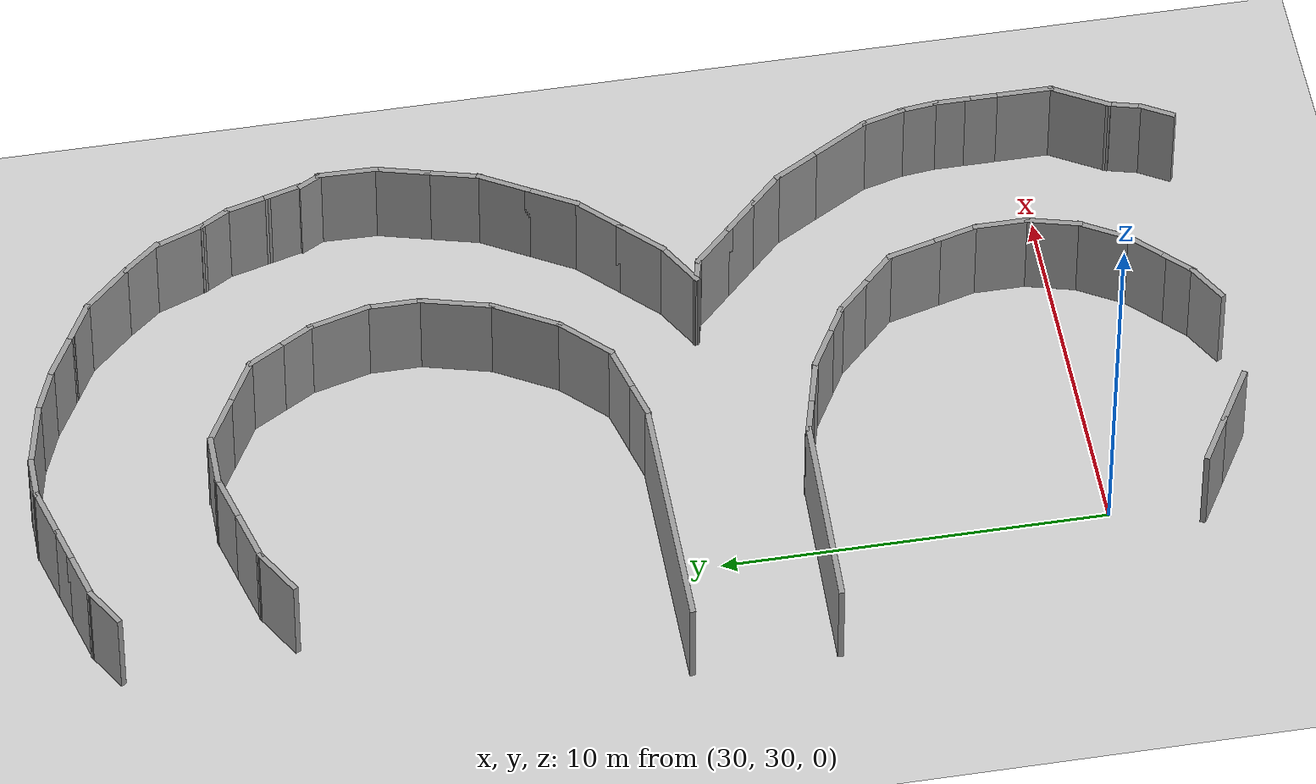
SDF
<sdf version="1.7">
 <world name="default">
  <model name="ground_plane">
   <static>1</static>
   <link name="link">
    <collision name="collision">
     <geometry><plane><normal>0 0 1</normal><size>100 100</size></plane></geometry>
     <surface><friction><ode><mu>100</mu><mu2>50</mu2></ode></friction></surface>
    </collision>
    <visual name="visual">
     <cast_shadows>0</cast_shadows>
     <geometry><plane><normal>0 0 1</normal><size>100 100</size></plane></geometry>
     <material>
      <script><uri>file://media/materials/scripts/gazebo.material</uri><name>Gazebo/Grey</name></script>
     </material>
    </visual>
   </link>
  </model>
  <model name="map4-otto">
   <pose>24.785 39.2572 0 0 -0 0</pose>
   <link name="Wall_100">
    <collision name="Wall_100_Collision">
     <geometry><box><size>1.5 0.15 2.5</size></box></geometry>
     <pose>0 0 1.25 0 -0 0</pose>
    </collision>
    <visual name="Wall_100_Visual">
     <pose>0 0 1.25 0 -0 0</pose>
     <geometry><box><size>1.5 0.15 2.5</size></box></geometry>
     <material>
      <script><uri>file://media/materials/scripts/gazebo.material</uri><name>Gazebo/Grey</name></script>
      <ambient>1 1 1 1</ambient>
     </material>
     <meta><layer>0</layer></meta>
    </visual>
    <pose>8.73086 -2.23652 0 0 -0 2.87979</pose>
   </link>
   <link name="Wall_101">
    <collision name="Wall_101_Collision">
     <geometry><box><size>1 0.15 2.5</size></box></geometry>
     <pose>0 0 1.25 0 -0 0</pose>
    </collision>
    <visual name="Wall_101_Visual">
     <pose>0 0 1.25 0 -0 0</pose>
     <geometry><box><size>1 0.15 2.5</size></box></geometry>
     <material>
      <script><uri>file://media/materials/scripts/gazebo.material</uri><name>Gazebo/Grey</name></script>
      <ambient>1 1 1 1</ambient>
     </material>
     <meta><layer>0</layer></meta>
    </visual>
    <pose>7.66835 -1.95182 0 0 -0 2.87979</pose>
   </link>
   <link name="Wall_102">
    <collision name="Wall_102_Collision">
     <geometry><box><size>5.5143 0.15 2.5</size></box></geometry>
     <pose>0 0 1.25 0 -0 0</pose>
    </collision>
    <visual name="Wall_102_Visual">
     <pose>0 0 1.25 0 -0 0</pose>
     <geometry><box><size>5.5143 0.15 2.5</size></box></geometry>
     <material>
      <script><uri>file://media/materials/scripts/gazebo.material</uri><name>Gazebo/Grey</name></script>
      <ambient>1 1 1 1</ambient>
     </material>
     <meta><layer>0</layer></meta>
    </visual>
    <pose>4.57683 -1.76312 0 0 -0 3.11225</pose>
   </link>
   <link name="Wall_198">
    <collision name="Wall_198_Collision">
     <geometry><box><size>1 0.15 2.5</size></box></geometry>
     <pose>0 0 1.25 0 -0 0</pose>
    </collision>
    <visual name="Wall_198_Visual">
     <pose>0 0 1.25 0 -0 0</pose>
     <geometry><box><size>1 0.15 2.5</size></box></geometry>
     <material>
      <script><uri>file://media/materials/scripts/gazebo.material</uri><name>Gazebo/Grey</name></script>
      <ambient>1 1 1 1</ambient>
     </material>
     <meta><layer>0</layer></meta>
    </visual>
    <pose>16.4429 -12.7382 0 0 -0 1.0472</pose>
   </link>
   <link name="Wall_199">
    <collision name="Wall_199_Collision">
     <geometry><box><size>1 0.15 2.5</size></box></geometry>
     <pose>0 0 1.25 0 -0 0</pose>
    </collision>
    <visual name="Wall_199_Visual">
     <pose>0 0 1.25 0 -0 0</pose>
     <geometry><box><size>1 0.15 2.5</size></box></geometry>
     <material>
      <script><uri>file://media/materials/scripts/gazebo.material</uri><name>Gazebo/Grey</name></script>
      <ambient>1 1 1 1</ambient>
     </material>
     <meta><layer>0</layer></meta>
    </visual>
    <pose>16.7654 -11.9596 0 0 -0 1.309</pose>
   </link>
   <link name="Wall_200">
    <collision name="Wall_200_Collision">
     <geometry><box><size>1.75 0.15 2.5</size></box></geometry>
     <pose>0 0 1.25 0 -0 0</pose>
    </collision>
    <visual name="Wall_200_Visual">
     <pose>0 0 1.25 0 -0 0</pose>
     <geometry><box><size>1.75 0.15 2.5</size></box></geometry>
     <material>
      <script><uri>file://media/materials/scripts/gazebo.material</uri><name>Gazebo/Grey</name></script>
      <ambient>1 1 1 1</ambient>
     </material>
     <meta><layer>0</layer></meta>
    </visual>
    <pose>17.2754 -10.8563 0 0 -0 1.0472</pose>
   </link>
   <link name="Wall_201">
    <collision name="Wall_201_Collision">
     <geometry><box><size>1.5 0.15 2.5</size></box></geometry>
     <pose>0 0 1.25 0 -0 0</pose>
    </collision>
    <visual name="Wall_201_Visual">
     <pose>0 0 1.25 0 -0 0</pose>
     <geometry><box><size>1.5 0.15 2.5</size></box></geometry>
     <material>
      <script><uri>file://media/materials/scripts/gazebo.material</uri><name>Gazebo/Grey</name></script>
      <ambient>1 1 1 1</ambient>
     </material>
     <meta><layer>0</layer></meta>
    </visual>
    <pose>17.6754 -9.48846 0 0 -0 1.5708</pose>
   </link>
   <link name="Wall_202">
    <collision name="Wall_202_Collision">
     <geometry><box><size>1 0.15 2.5</size></box></geometry>
     <pose>0 0 1.25 0 -0 0</pose>
    </collision>
    <visual name="Wall_202_Visual">
     <pose>0 0 1.25 0 -0 0</pose>
     <geometry><box><size>1 0.15 2.5</size></box></geometry>
     <material>
      <script><uri>file://media/materials/scripts/gazebo.material</uri><name>Gazebo/Grey</name></script>
      <ambient>1 1 1 1</ambient>
     </material>
     <meta><layer>0</layer></meta>
    </visual>
    <pose>17.6754 -8.38846 0 0 -0 1.5708</pose>
   </link>
   <link name="Wall_203">
    <collision name="Wall_203_Collision">
     <geometry><box><size>1 0.15 2.5</size></box></geometry>
     <pose>0 0 1.25 0 -0 0</pose>
    </collision>
    <visual name="Wall_203_Visual">
     <pose>0 0 1.25 0 -0 0</pose>
     <geometry><box><size>1 0.15 2.5</size></box></geometry>
     <material>
      <script><uri>file://media/materials/scripts/gazebo.material</uri><name>Gazebo/Grey</name></script>
      <ambient>1 1 1 1</ambient>
     </material>
     <meta><layer>0</layer></meta>
    </visual>
    <pose>17.6754 -7.53846 0 0 -0 1.5708</pose>
   </link>
   <link name="Wall_204">
    <collision name="Wall_204_Collision">
     <geometry><box><size>1.09133 0.15 2.5</size></box></geometry>
     <pose>0 0 1.25 0 -0 0</pose>
    </collision>
    <visual name="Wall_204_Visual">
     <pose>0 0 1.25 0 -0 0</pose>
     <geometry><box><size>1.09133 0.15 2.5</size></box></geometry>
     <material>
      <script><uri>file://media/materials/scripts/gazebo.material</uri><name>Gazebo/Grey</name></script>
      <ambient>1 1 1 1</ambient>
     </material>
     <meta><layer>0</layer></meta>
    </visual>
    <pose>17.6226 -6.64576 0 0 -0 1.68326</pose>
   </link>
   <link name="Wall_205">
    <collision name="Wall_205_Collision">
     <geometry><box><size>1.25 0.15 2.5</size></box></geometry>
     <pose>0 0 1.25 0 -0 0</pose>
    </collision>
    <visual name="Wall_205_Visual">
     <pose>0 0 1.25 0 -0 0</pose>
     <geometry><box><size>1.25 0.15 2.5</size></box></geometry>
     <material>
      <script><uri>file://media/materials/scripts/gazebo.material</uri><name>Gazebo/Grey</name></script>
      <ambient>1 1 1 1</ambient>
     </material>
     <meta><layer>0</layer></meta>
    </visual>
    <pose>17.4274 -5.6754 0 0 -0 1.8326</pose>
   </link>
   <link name="Wall_208">
    <collision name="Wall_208_Collision">
     <geometry><box><size>1.75 0.15 2.5</size></box></geometry>
     <pose>0 0 1.25 0 -0 0</pose>
    </collision>
    <visual name="Wall_208_Visual">
     <pose>0 0 1.25 0 -0 0</pose>
     <geometry><box><size>1.75 0.15 2.5</size></box></geometry>
     <material>
      <script><uri>file://media/materials/scripts/gazebo.material</uri><name>Gazebo/Grey</name></script>
      <ambient>1 1 1 1</ambient>
     </material>
     <meta><layer>0</layer></meta>
    </visual>
    <pose>16.8851 -4.45132 0 0 -0 2.0944</pose>
   </link>
   <link name="Wall_209">
    <collision name="Wall_209_Collision">
     <geometry><box><size>1.5 0.15 2.5</size></box></geometry>
     <pose>0 0 1.25 0 -0 0</pose>
    </collision>
    <visual name="Wall_209_Visual">
     <pose>0 0 1.25 0 -0 0</pose>
     <geometry><box><size>1.5 0.15 2.5</size></box></geometry>
     <material>
      <script><uri>file://media/materials/scripts/gazebo.material</uri><name>Gazebo/Grey</name></script>
      <ambient>1 1 1 1</ambient>
     </material>
     <meta><layer>0</layer></meta>
    </visual>
    <pose>16.1476 -3.17393 0 0 -0 2.0944</pose>
   </link>
   <link name="Wall_210">
    <collision name="Wall_210_Collision">
     <geometry><box><size>1.25 0.15 2.5</size></box></geometry>
     <pose>0 0 1.25 0 -0 0</pose>
    </collision>
    <visual name="Wall_210_Visual">
     <pose>0 0 1.25 0 -0 0</pose>
     <geometry><box><size>1.25 0.15 2.5</size></box></geometry>
     <material>
      <script><uri>file://media/materials/scripts/gazebo.material</uri><name>Gazebo/Grey</name></script>
      <ambient>1 1 1 1</ambient>
     </material>
     <meta><layer>0</layer></meta>
    </visual>
    <pose>15.4211 -2.20046 0 0 -0 2.35619</pose>
   </link>
   <link name="Wall_211">
    <collision name="Wall_211_Collision">
     <geometry><box><size>1.25 0.15 2.5</size></box></geometry>
     <pose>0 0 1.25 0 -0 0</pose>
    </collision>
    <visual name="Wall_211_Visual">
     <pose>0 0 1.25 0 -0 0</pose>
     <geometry><box><size>1.25 0.15 2.5</size></box></geometry>
     <material>
      <script><uri>file://media/materials/scripts/gazebo.material</uri><name>Gazebo/Grey</name></script>
      <ambient>1 1 1 1</ambient>
     </material>
     <meta><layer>0</layer></meta>
    </visual>
    <pose>14.6433 -1.42264 0 0 -0 2.35619</pose>
   </link>
   <link name="Wall_212">
    <collision name="Wall_212_Collision">
     <geometry><box><size>1.5 0.15 2.5</size></box></geometry>
     <pose>0 0 1.25 0 -0 0</pose>
    </collision>
    <visual name="Wall_212_Visual">
     <pose>0 0 1.25 0 -0 0</pose>
     <geometry><box><size>1.5 0.15 2.5</size></box></geometry>
     <material>
      <script><uri>file://media/materials/scripts/gazebo.material</uri><name>Gazebo/Grey</name></script>
      <ambient>1 1 1 1</ambient>
     </material>
     <meta><layer>0</layer></meta>
    </visual>
    <pose>13.7771 -0.556434 0 0 -0 2.35619</pose>
   </link>
   <link name="Wall_213">
    <collision name="Wall_213_Collision">
     <geometry><box><size>0.75 0.15 2.5</size></box></geometry>
     <pose>0 0 1.25 0 -0 0</pose>
    </collision>
    <visual name="Wall_213_Visual">
     <pose>0 0 1.25 0 -0 0</pose>
     <geometry><box><size>0.75 0.15 2.5</size></box></geometry>
     <material>
      <script><uri>file://media/materials/scripts/gazebo.material</uri><name>Gazebo/Grey</name></script>
      <ambient>1 1 1 1</ambient>
     </material>
     <meta><layer>0</layer></meta>
    </visual>
    <pose>13.01 -0.001491 0 0 -0 2.87979</pose>
   </link>
   <link name="Wall_214">
    <collision name="Wall_214_Collision">
     <geometry><box><size>1.5 0.15 2.5</size></box></geometry>
     <pose>0 0 1.25 0 -0 0</pose>
    </collision>
    <visual name="Wall_214_Visual">
     <pose>0 0 1.25 0 -0 0</pose>
     <geometry><box><size>1.5 0.15 2.5</size></box></geometry>
     <material>
      <script><uri>file://media/materials/scripts/gazebo.material</uri><name>Gazebo/Grey</name></script>
      <ambient>1 1 1 1</ambient>
     </material>
     <meta><layer>0</layer></meta>
    </visual>
    <pose>13.3048 0.413655 0 0 -0 0.523599</pose>
   </link>
   <link name="Wall_215">
    <collision name="Wall_215_Collision">
     <geometry><box><size>1.5 0.15 2.5</size></box></geometry>
     <pose>0 0 1.25 0 -0 0</pose>
    </collision>
    <visual name="Wall_215_Visual">
     <pose>0 0 1.25 0 -0 0</pose>
     <geometry><box><size>1.5 0.15 2.5</size></box></geometry>
     <material>
      <script><uri>file://media/materials/scripts/gazebo.material</uri><name>Gazebo/Grey</name></script>
      <ambient>1 1 1 1</ambient>
     </material>
     <meta><layer>0</layer></meta>
    </visual>
    <pose>14.3667 1.22845 0 0 -0 0.785398</pose>
   </link>
   <link name="Wall_216">
    <collision name="Wall_216_Collision">
     <geometry><box><size>1.5 0.15 2.5</size></box></geometry>
     <pose>0 0 1.25 0 -0 0</pose>
    </collision>
    <visual name="Wall_216_Visual">
     <pose>0 0 1.25 0 -0 0</pose>
     <geometry><box><size>1.5 0.15 2.5</size></box></geometry>
     <material>
      <script><uri>file://media/materials/scripts/gazebo.material</uri><name>Gazebo/Grey</name></script>
      <ambient>1 1 1 1</ambient>
     </material>
     <meta><layer>0</layer></meta>
    </visual>
    <pose>15.3213 2.18305 0 0 -0 0.785398</pose>
   </link>
   <link name="Wall_217">
    <collision name="Wall_217_Collision">
     <geometry><box><size>1.5 0.15 2.5</size></box></geometry>
     <pose>0 0 1.25 0 -0 0</pose>
    </collision>
    <visual name="Wall_217_Visual">
     <pose>0 0 1.25 0 -0 0</pose>
     <geometry><box><size>1.5 0.15 2.5</size></box></geometry>
     <material>
      <script><uri>file://media/materials/scripts/gazebo.material</uri><name>Gazebo/Grey</name></script>
      <ambient>1 1 1 1</ambient>
     </material>
     <meta><layer>0</layer></meta>
    </visual>
    <pose>16.1361 3.24491 0 0 -0 1.0472</pose>
   </link>
   <link name="Wall_218">
    <collision name="Wall_218_Collision">
     <geometry><box><size>1.5 0.15 2.5</size></box></geometry>
     <pose>0 0 1.25 0 -0 0</pose>
    </collision>
    <visual name="Wall_218_Visual">
     <pose>0 0 1.25 0 -0 0</pose>
     <geometry><box><size>1.5 0.15 2.5</size></box></geometry>
     <material>
      <script><uri>file://media/materials/scripts/gazebo.material</uri><name>Gazebo/Grey</name></script>
      <ambient>1 1 1 1</ambient>
     </material>
     <meta><layer>0</layer></meta>
    </visual>
    <pose>16.8111 4.41404 0 0 -0 1.0472</pose>
   </link>
   <link name="Wall_219">
    <collision name="Wall_219_Collision">
     <geometry><box><size>1.5 0.15 2.5</size></box></geometry>
     <pose>0 0 1.25 0 -0 0</pose>
    </collision>
    <visual name="Wall_219_Visual">
     <pose>0 0 1.25 0 -0 0</pose>
     <geometry><box><size>1.5 0.15 2.5</size></box></geometry>
     <material>
      <script><uri>file://media/materials/scripts/gazebo.material</uri><name>Gazebo/Grey</name></script>
      <ambient>1 1 1 1</ambient>
     </material>
     <meta><layer>0</layer></meta>
    </visual>
    <pose>17.3233 5.65061 0 0 -0 1.309</pose>
   </link>
   <link name="Wall_220">
    <collision name="Wall_220_Collision">
     <geometry><box><size>1.5 0.15 2.5</size></box></geometry>
     <pose>0 0 1.25 0 -0 0</pose>
    </collision>
    <visual name="Wall_220_Visual">
     <pose>0 0 1.25 0 -0 0</pose>
     <geometry><box><size>1.5 0.15 2.5</size></box></geometry>
     <material>
      <script><uri>file://media/materials/scripts/gazebo.material</uri><name>Gazebo/Grey</name></script>
      <ambient>1 1 1 1</ambient>
     </material>
     <meta><layer>0</layer></meta>
    </visual>
    <pose>17.6727 6.95461 0 0 -0 1.309</pose>
   </link>
   <link name="Wall_221">
    <collision name="Wall_221_Collision">
     <geometry><box><size>1.65173 0.15 2.5</size></box></geometry>
     <pose>0 0 1.25 0 -0 0</pose>
    </collision>
    <visual name="Wall_221_Visual">
     <pose>0 0 1.25 0 -0 0</pose>
     <geometry><box><size>1.65173 0.15 2.5</size></box></geometry>
     <material>
      <script><uri>file://media/materials/scripts/gazebo.material</uri><name>Gazebo/Grey</name></script>
      <ambient>1 1 1 1</ambient>
     </material>
     <meta><layer>0</layer></meta>
    </visual>
    <pose>17.8638 8.3573 0 0 -0 1.5489</pose>
   </link>
   <link name="Wall_227">
    <collision name="Wall_227_Collision">
     <geometry><box><size>1.25 0.15 2.5</size></box></geometry>
     <pose>0 0 1.25 0 -0 0</pose>
    </collision>
    <visual name="Wall_227_Visual">
     <pose>0 0 1.25 0 -0 0</pose>
     <geometry><box><size>1.25 0.15 2.5</size></box></geometry>
     <material>
      <script><uri>file://media/materials/scripts/gazebo.material</uri><name>Gazebo/Grey</name></script>
      <ambient>1 1 1 1</ambient>
     </material>
     <meta><layer>0</layer></meta>
    </visual>
    <pose>4.49645 16.4596 0 0 -0 0.523599</pose>
   </link>
   <link name="Wall_228">
    <collision name="Wall_228_Collision">
     <geometry><box><size>1.5 0.15 2.5</size></box></geometry>
     <pose>0 0 1.25 0 -0 0</pose>
    </collision>
    <visual name="Wall_228_Visual">
     <pose>0 0 1.25 0 -0 0</pose>
     <geometry><box><size>1.5 0.15 2.5</size></box></geometry>
     <material>
      <script><uri>file://media/materials/scripts/gazebo.material</uri><name>Gazebo/Grey</name></script>
      <ambient>1 1 1 1</ambient>
     </material>
     <meta><layer>0</layer></meta>
    </visual>
    <pose>5.62476 16.9093 0 0 -0 0.261799</pose>
   </link>
   <link name="Wall_229">
    <collision name="Wall_229_Collision">
     <geometry><box><size>1 0.15 2.5</size></box></geometry>
     <pose>0 0 1.25 0 -0 0</pose>
    </collision>
    <visual name="Wall_229_Visual">
     <pose>0 0 1.25 0 -0 0</pose>
     <geometry><box><size>1 0.15 2.5</size></box></geometry>
     <material>
      <script><uri>file://media/materials/scripts/gazebo.material</uri><name>Gazebo/Grey</name></script>
      <ambient>1 1 1 1</ambient>
     </material>
     <meta><layer>0</layer></meta>
    </visual>
    <pose>6.68728 17.194 0 0 -0 0.261799</pose>
   </link>
   <link name="Wall_234">
    <collision name="Wall_234_Collision">
     <geometry><box><size>1.33942 0.15 2.5</size></box></geometry>
     <pose>0 0 1.25 0 -0 0</pose>
    </collision>
    <visual name="Wall_234_Visual">
     <pose>0 0 1.25 0 -0 0</pose>
     <geometry><box><size>1.33942 0.15 2.5</size></box></geometry>
     <material>
      <script><uri>file://media/materials/scripts/gazebo.material</uri><name>Gazebo/Grey</name></script>
      <ambient>1 1 1 1</ambient>
     </material>
     <meta><layer>0</layer></meta>
    </visual>
    <pose>11.7386 17.0216 0 0 -0 -0.395162</pose>
   </link>
   <link name="Wall_236">
    <collision name="Wall_236_Collision">
     <geometry><box><size>1.42663 0.15 2.5</size></box></geometry>
     <pose>0 0 1.25 0 -0 0</pose>
    </collision>
    <visual name="Wall_236_Visual">
     <pose>0 0 1.25 0 -0 0</pose>
     <geometry><box><size>1.42663 0.15 2.5</size></box></geometry>
     <material>
      <script><uri>file://media/materials/scripts/gazebo.material</uri><name>Gazebo/Grey</name></script>
      <ambient>1 1 1 1</ambient>
     </material>
     <meta><layer>0</layer></meta>
    </visual>
    <pose>12.9178 16.4411 0 0 -0 -0.527049</pose>
   </link>
   <link name="Wall_239">
    <collision name="Wall_239_Collision">
     <geometry><box><size>1.3255 0.15 2.5</size></box></geometry>
     <pose>0 0 1.25 0 -0 0</pose>
    </collision>
    <visual name="Wall_239_Visual">
     <pose>0 0 1.25 0 -0 0</pose>
     <geometry><box><size>1.3255 0.15 2.5</size></box></geometry>
     <material>
      <script><uri>file://media/materials/scripts/gazebo.material</uri><name>Gazebo/Grey</name></script>
      <ambient>1 1 1 1</ambient>
     </material>
     <meta><layer>0</layer></meta>
    </visual>
    <pose>15.8455 13.9906 0 0 -0 -0.88444</pose>
   </link>
   <link name="Wall_240">
    <collision name="Wall_240_Collision">
     <geometry><box><size>1.45211 0.15 2.5</size></box></geometry>
     <pose>0 0 1.25 0 -0 0</pose>
    </collision>
    <visual name="Wall_240_Visual">
     <pose>0 0 1.25 0 -0 0</pose>
     <geometry><box><size>1.45211 0.15 2.5</size></box></geometry>
     <material>
      <script><uri>file://media/materials/scripts/gazebo.material</uri><name>Gazebo/Grey</name></script>
      <ambient>1 1 1 1</ambient>
     </material>
     <meta><layer>0</layer></meta>
    </visual>
    <pose>16.4158 12.9272 0 0 -0 -1.20853</pose>
   </link>
   <link name="Wall_241">
    <collision name="Wall_241_Collision">
     <geometry><box><size>1 0.15 2.5</size></box></geometry>
     <pose>0 0 1.25 0 -0 0</pose>
    </collision>
    <visual name="Wall_241_Visual">
     <pose>0 0 1.25 0 -0 0</pose>
     <geometry><box><size>1 0.15 2.5</size></box></geometry>
     <material>
      <script><uri>file://media/materials/scripts/gazebo.material</uri><name>Gazebo/Grey</name></script>
      <ambient>1 1 1 1</ambient>
     </material>
     <meta><layer>0</layer></meta>
    </visual>
    <pose>16.859 11.9503 0 0 -0 -1.0472</pose>
   </link>
   <link name="Wall_242">
    <collision name="Wall_242_Collision">
     <geometry><box><size>1.25 0.15 2.5</size></box></geometry>
     <pose>0 0 1.25 0 -0 0</pose>
    </collision>
    <visual name="Wall_242_Visual">
     <pose>0 0 1.25 0 -0 0</pose>
     <geometry><box><size>1.25 0.15 2.5</size></box></geometry>
     <material>
      <script><uri>file://media/materials/scripts/gazebo.material</uri><name>Gazebo/Grey</name></script>
      <ambient>1 1 1 1</ambient>
     </material>
     <meta><layer>0</layer></meta>
    </visual>
    <pose>17.2139 11.051 0 0 -0 -1.309</pose>
   </link>
   <link name="Wall_243">
    <collision name="Wall_243_Collision">
     <geometry><box><size>1.1038 0.15 2.5</size></box></geometry>
     <pose>0 0 1.25 0 -0 0</pose>
    </collision>
    <visual name="Wall_243_Visual">
     <pose>0 0 1.25 0 -0 0</pose>
     <geometry><box><size>1.1038 0.15 2.5</size></box></geometry>
     <material>
      <script><uri>file://media/materials/scripts/gazebo.material</uri><name>Gazebo/Grey</name></script>
      <ambient>1 1 1 1</ambient>
     </material>
     <meta><layer>0</layer></meta>
    </visual>
    <pose>17.4827 10.0599 0 0 -0 -1.30247</pose>
   </link>
   <link name="Wall_244">
    <collision name="Wall_244_Collision">
     <geometry><box><size>0.711846 0.15 2.5</size></box></geometry>
     <pose>0 0 1.25 0 -0 0</pose>
    </collision>
    <visual name="Wall_244_Visual">
     <pose>0 0 1.25 0 -0 0</pose>
     <geometry><box><size>0.711846 0.15 2.5</size></box></geometry>
     <material>
      <script><uri>file://media/materials/scripts/gazebo.material</uri><name>Gazebo/Grey</name></script>
      <ambient>1 1 1 1</ambient>
     </material>
     <meta><layer>0</layer></meta>
    </visual>
    <pose>17.7118 9.35402 0 0 -0 -1.0671</pose>
   </link>
   <link name="Wall_246">
    <collision name="Wall_246_Collision">
     <geometry><box><size>1.25 0.15 2.5</size></box></geometry>
     <pose>0 0 1.25 0 -0 0</pose>
    </collision>
    <visual name="Wall_246_Visual">
     <pose>0 0 1.25 0 -0 0</pose>
     <geometry><box><size>1.25 0.15 2.5</size></box></geometry>
     <material>
      <script><uri>file://media/materials/scripts/gazebo.material</uri><name>Gazebo/Grey</name></script>
      <ambient>1 1 1 1</ambient>
     </material>
     <meta><layer>0</layer></meta>
    </visual>
    <pose>13.9458 15.845 0 0 -0 -0.523599</pose>
   </link>
   <link name="Wall_247">
    <collision name="Wall_247_Collision">
     <geometry><box><size>1.68928 0.15 2.5</size></box></geometry>
     <pose>0 0 1.25 0 -0 0</pose>
    </collision>
    <visual name="Wall_247_Visual">
     <pose>0 0 1.25 0 -0 0</pose>
     <geometry><box><size>1.68928 0.15 2.5</size></box></geometry>
     <material>
      <script><uri>file://media/materials/scripts/gazebo.material</uri><name>Gazebo/Grey</name></script>
      <ambient>1 1 1 1</ambient>
     </material>
     <meta><layer>0</layer></meta>
    </visual>
    <pose>14.9476 15.0076 0 0 -0 -0.819339</pose>
   </link>
   <link name="Wall_249">
    <collision name="Wall_249_Collision">
     <geometry><box><size>1.5 0.15 2.5</size></box></geometry>
     <pose>0 0 1.25 0 -0 0</pose>
    </collision>
    <visual name="Wall_249_Visual">
     <pose>0 0 1.25 0 -0 0</pose>
     <geometry><box><size>1.5 0.15 2.5</size></box></geometry>
     <material>
      <script><uri>file://media/materials/scripts/gazebo.material</uri><name>Gazebo/Grey</name></script>
      <ambient>1 1 1 1</ambient>
     </material>
     <meta><layer>0</layer></meta>
    </visual>
    <pose>7.7498 17.4787 0 0 -0 0.261799</pose>
   </link>
   <link name="Wall_250">
    <collision name="Wall_250_Collision">
     <geometry><box><size>1.25 0.15 2.5</size></box></geometry>
     <pose>0 0 1.25 0 -0 0</pose>
    </collision>
    <visual name="Wall_250_Visual">
     <pose>0 0 1.25 0 -0 0</pose>
     <geometry><box><size>1.25 0.15 2.5</size></box></geometry>
     <material>
      <script><uri>file://media/materials/scripts/gazebo.material</uri><name>Gazebo/Grey</name></script>
      <ambient>1 1 1 1</ambient>
     </material>
     <meta><layer>0</layer></meta>
    </visual>
    <pose>8.9518 17.6534 0 0 -0 0</pose>
   </link>
   <link name="Wall_251">
    <collision name="Wall_251_Collision">
     <geometry><box><size>1.88538 0.15 2.5</size></box></geometry>
     <pose>0 0 1.25 0 -0 0</pose>
    </collision>
    <visual name="Wall_251_Visual">
     <pose>0 0 1.25 0 -0 0</pose>
     <geometry><box><size>1.88538 0.15 2.5</size></box></geometry>
     <material>
      <script><uri>file://media/materials/scripts/gazebo.material</uri><name>Gazebo/Grey</name></script>
      <ambient>1 1 1 1</ambient>
     </material>
     <meta><layer>0</layer></meta>
    </visual>
    <pose>10.3458 17.452 0 0 -0 -0.234323</pose>
   </link>
   <link name="Wall_33">
    <collision name="Wall_33_Collision">
     <geometry><box><size>1.5 0.15 2.5</size></box></geometry>
     <pose>0 0 1.25 0 -0 0</pose>
    </collision>
    <visual name="Wall_33_Visual">
     <pose>0 0 1.25 0 -0 0</pose>
     <geometry><box><size>1.5 0.15 2.5</size></box></geometry>
     <material>
      <script><uri>file://media/materials/scripts/gazebo.material</uri><name>Gazebo/Grey</name></script>
      <ambient>1 1 1 1</ambient>
     </material>
     <meta><layer>0</layer></meta>
    </visual>
    <pose>4.91226 12.0644 0 0 -0 0.523599</pose>
   </link>
   <link name="Wall_34">
    <collision name="Wall_34_Collision">
     <geometry><box><size>1.5 0.15 2.5</size></box></geometry>
     <pose>0 0 1.25 0 -0 0</pose>
    </collision>
    <visual name="Wall_34_Visual">
     <pose>0 0 1.25 0 -0 0</pose>
     <geometry><box><size>1.5 0.15 2.5</size></box></geometry>
     <material>
      <script><uri>file://media/materials/scripts/gazebo.material</uri><name>Gazebo/Grey</name></script>
      <ambient>1 1 1 1</ambient>
     </material>
     <meta><layer>0</layer></meta>
    </visual>
    <pose>6.14882 12.5766 0 0 -0 0.261799</pose>
   </link>
   <link name="Wall_35">
    <collision name="Wall_35_Collision">
     <geometry><box><size>1.5 0.15 2.5</size></box></geometry>
     <pose>0 0 1.25 0 -0 0</pose>
    </collision>
    <visual name="Wall_35_Visual">
     <pose>0 0 1.25 0 -0 0</pose>
     <geometry><box><size>1.5 0.15 2.5</size></box></geometry>
     <material>
      <script><uri>file://media/materials/scripts/gazebo.material</uri><name>Gazebo/Grey</name></script>
      <ambient>1 1 1 1</ambient>
     </material>
     <meta><layer>0</layer></meta>
    </visual>
    <pose>7.45282 12.926 0 0 -0 0.261799</pose>
   </link>
   <link name="Wall_36">
    <collision name="Wall_36_Collision">
     <geometry><box><size>1.5 0.15 2.5</size></box></geometry>
     <pose>0 0 1.25 0 -0 0</pose>
    </collision>
    <visual name="Wall_36_Visual">
     <pose>0 0 1.25 0 -0 0</pose>
     <geometry><box><size>1.5 0.15 2.5</size></box></geometry>
     <material>
      <script><uri>file://media/materials/scripts/gazebo.material</uri><name>Gazebo/Grey</name></script>
      <ambient>1 1 1 1</ambient>
     </material>
     <meta><layer>0</layer></meta>
    </visual>
    <pose>8.77982 13.1007 0 0 -0 0</pose>
   </link>
   <link name="Wall_37">
    <collision name="Wall_37_Collision">
     <geometry><box><size>1.5 0.15 2.5</size></box></geometry>
     <pose>0 0 1.25 0 -0 0</pose>
    </collision>
    <visual name="Wall_37_Visual">
     <pose>0 0 1.25 0 -0 0</pose>
     <geometry><box><size>1.5 0.15 2.5</size></box></geometry>
     <material>
      <script><uri>file://media/materials/scripts/gazebo.material</uri><name>Gazebo/Grey</name></script>
      <ambient>1 1 1 1</ambient>
     </material>
     <meta><layer>0</layer></meta>
    </visual>
    <pose>10.0394 12.7632 0 0 -0 -0.523599</pose>
   </link>
   <link name="Wall_38">
    <collision name="Wall_38_Collision">
     <geometry><box><size>1.5 0.15 2.5</size></box></geometry>
     <pose>0 0 1.25 0 -0 0</pose>
    </collision>
    <visual name="Wall_38_Visual">
     <pose>0 0 1.25 0 -0 0</pose>
     <geometry><box><size>1.5 0.15 2.5</size></box></geometry>
     <material>
      <script><uri>file://media/materials/scripts/gazebo.material</uri><name>Gazebo/Grey</name></script>
      <ambient>1 1 1 1</ambient>
     </material>
     <meta><layer>0</layer></meta>
    </visual>
    <pose>11.2085 12.0882 0 0 -0 -0.523599</pose>
   </link>
   <link name="Wall_39">
    <collision name="Wall_39_Collision">
     <geometry><box><size>1.25 0.15 2.5</size></box></geometry>
     <pose>0 0 1.25 0 -0 0</pose>
    </collision>
    <visual name="Wall_39_Visual">
     <pose>0 0 1.25 0 -0 0</pose>
     <geometry><box><size>1.25 0.15 2.5</size></box></geometry>
     <material>
      <script><uri>file://media/materials/scripts/gazebo.material</uri><name>Gazebo/Grey</name></script>
      <ambient>1 1 1 1</ambient>
     </material>
     <meta><layer>0</layer></meta>
    </visual>
    <pose>12.0681 11.2744 0 0 -0 -1.0472</pose>
   </link>
   <link name="Wall_40">
    <collision name="Wall_40_Collision">
     <geometry><box><size>1 0.15 2.5</size></box></geometry>
     <pose>0 0 1.25 0 -0 0</pose>
    </collision>
    <visual name="Wall_40_Visual">
     <pose>0 0 1.25 0 -0 0</pose>
     <geometry><box><size>1 0.15 2.5</size></box></geometry>
     <material>
      <script><uri>file://media/materials/scripts/gazebo.material</uri><name>Gazebo/Grey</name></script>
      <ambient>1 1 1 1</ambient>
     </material>
     <meta><layer>0</layer></meta>
    </visual>
    <pose>12.5556 10.43 0 0 -0 -1.0472</pose>
   </link>
   <link name="Wall_41">
    <collision name="Wall_41_Collision">
     <geometry><box><size>1.75 0.15 2.5</size></box></geometry>
     <pose>0 0 1.25 0 -0 0</pose>
    </collision>
    <visual name="Wall_41_Visual">
     <pose>0 0 1.25 0 -0 0</pose>
     <geometry><box><size>1.75 0.15 2.5</size></box></geometry>
     <material>
      <script><uri>file://media/materials/scripts/gazebo.material</uri><name>Gazebo/Grey</name></script>
      <ambient>1 1 1 1</ambient>
     </material>
     <meta><layer>0</layer></meta>
    </visual>
    <pose>12.9751 9.28923 0 0 -0 -1.309</pose>
   </link>
   <link name="Wall_42">
    <collision name="Wall_42_Collision">
     <geometry><box><size>1.5 0.15 2.5</size></box></geometry>
     <pose>0 0 1.25 0 -0 0</pose>
    </collision>
    <visual name="Wall_42_Visual">
     <pose>0 0 1.25 0 -0 0</pose>
     <geometry><box><size>1.5 0.15 2.5</size></box></geometry>
     <material>
      <script><uri>file://media/materials/scripts/gazebo.material</uri><name>Gazebo/Grey</name></script>
      <ambient>1 1 1 1</ambient>
     </material>
     <meta><layer>0</layer></meta>
    </visual>
    <pose>13.1822 7.84149 0 0 -0 -1.5708</pose>
   </link>
   <link name="Wall_43">
    <collision name="Wall_43_Collision">
     <geometry><box><size>2 0.15 2.5</size></box></geometry>
     <pose>0 0 1.25 0 -0 0</pose>
    </collision>
    <visual name="Wall_43_Visual">
     <pose>0 0 1.25 0 -0 0</pose>
     <geometry><box><size>2 0.15 2.5</size></box></geometry>
     <material>
      <script><uri>file://media/materials/scripts/gazebo.material</uri><name>Gazebo/Grey</name></script>
      <ambient>1 1 1 1</ambient>
     </material>
     <meta><layer>0</layer></meta>
    </visual>
    <pose>12.9428 6.27301 0 0 -0 -1.8326</pose>
   </link>
   <link name="Wall_44">
    <collision name="Wall_44_Collision">
     <geometry><box><size>2 0.15 2.5</size></box></geometry>
     <pose>0 0 1.25 0 -0 0</pose>
    </collision>
    <visual name="Wall_44_Visual">
     <pose>0 0 1.25 0 -0 0</pose>
     <geometry><box><size>2 0.15 2.5</size></box></geometry>
     <material>
      <script><uri>file://media/materials/scripts/gazebo.material</uri><name>Gazebo/Grey</name></script>
      <ambient>1 1 1 1</ambient>
     </material>
     <meta><layer>0</layer></meta>
    </visual>
    <pose>12.2409 4.57845 0 0 -0 -2.0944</pose>
   </link>
   <link name="Wall_45">
    <collision name="Wall_45_Collision">
     <geometry><box><size>1.75 0.15 2.5</size></box></geometry>
     <pose>0 0 1.25 0 -0 0</pose>
    </collision>
    <visual name="Wall_45_Visual">
     <pose>0 0 1.25 0 -0 0</pose>
     <geometry><box><size>1.75 0.15 2.5</size></box></geometry>
     <material>
      <script><uri>file://media/materials/scripts/gazebo.material</uri><name>Gazebo/Grey</name></script>
      <ambient>1 1 1 1</ambient>
     </material>
     <meta><layer>0</layer></meta>
    </visual>
    <pose>11.2127 3.21169 0 0 -0 -2.35619</pose>
   </link>
   <link name="Wall_46">
    <collision name="Wall_46_Collision">
     <geometry><box><size>1.5 0.15 2.5</size></box></geometry>
     <pose>0 0 1.25 0 -0 0</pose>
    </collision>
    <visual name="Wall_46_Visual">
     <pose>0 0 1.25 0 -0 0</pose>
     <geometry><box><size>1.5 0.15 2.5</size></box></geometry>
     <material>
      <script><uri>file://media/materials/scripts/gazebo.material</uri><name>Gazebo/Grey</name></script>
      <ambient>1 1 1 1</ambient>
     </material>
     <meta><layer>0</layer></meta>
    </visual>
    <pose>9.99502 2.4713 0 0 -0 -2.87979</pose>
   </link>
   <link name="Wall_47">
    <collision name="Wall_47_Collision">
     <geometry><box><size>1 0.15 2.5</size></box></geometry>
     <pose>0 0 1.25 0 -0 0</pose>
    </collision>
    <visual name="Wall_47_Visual">
     <pose>0 0 1.25 0 -0 0</pose>
     <geometry><box><size>1 0.15 2.5</size></box></geometry>
     <material>
      <script><uri>file://media/materials/scripts/gazebo.material</uri><name>Gazebo/Grey</name></script>
      <ambient>1 1 1 1</ambient>
     </material>
     <meta><layer>0</layer></meta>
    </visual>
    <pose>8.9325 2.1866 0 0 -0 -2.87979</pose>
   </link>
   <link name="Wall_48">
    <collision name="Wall_48_Collision">
     <geometry><box><size>6.75 0.15 2.5</size></box></geometry>
     <pose>0 0 1.25 0 -0 0</pose>
    </collision>
    <visual name="Wall_48_Visual">
     <pose>0 0 1.25 0 -0 0</pose>
     <geometry><box><size>6.75 0.15 2.5</size></box></geometry>
     <material>
      <script><uri>file://media/materials/scripts/gazebo.material</uri><name>Gazebo/Grey</name></script>
      <ambient>1 1 1 1</ambient>
     </material>
     <meta><layer>0</layer></meta>
    </visual>
    <pose>5.22198 2.0766 0 0 -0 3.14159</pose>
   </link>
   <link name="Wall_84">
    <collision name="Wall_84_Collision">
     <geometry><box><size>1.5 0.15 2.5</size></box></geometry>
     <pose>0 0 1.25 0 -0 0</pose>
    </collision>
    <visual name="Wall_84_Visual">
     <pose>0 0 1.25 0 -0 0</pose>
     <geometry><box><size>1.5 0.15 2.5</size></box></geometry>
     <material>
      <script><uri>file://media/materials/scripts/gazebo.material</uri><name>Gazebo/Grey</name></script>
      <ambient>1 1 1 1</ambient>
     </material>
     <meta><layer>0</layer></meta>
    </visual>
    <pose>5.23526 -11.9229 0 0 -0 -0.523599</pose>
   </link>
   <link name="Wall_85">
    <collision name="Wall_85_Collision">
     <geometry><box><size>1.75 0.15 2.5</size></box></geometry>
     <pose>0 0 1.25 0 -0 0</pose>
    </collision>
    <visual name="Wall_85_Visual">
     <pose>0 0 1.25 0 -0 0</pose>
     <geometry><box><size>1.75 0.15 2.5</size></box></geometry>
     <material>
      <script><uri>file://media/materials/scripts/gazebo.material</uri><name>Gazebo/Grey</name></script>
      <ambient>1 1 1 1</ambient>
     </material>
     <meta><layer>0</layer></meta>
    </visual>
    <pose>6.51264 -12.6604 0 0 -0 -0.523599</pose>
   </link>
   <link name="Wall_88">
    <collision name="Wall_88_Collision">
     <geometry><box><size>1.25 0.15 2.5</size></box></geometry>
     <pose>0 0 1.25 0 -0 0</pose>
    </collision>
    <visual name="Wall_88_Visual">
     <pose>0 0 1.25 0 -0 0</pose>
     <geometry><box><size>1.25 0.15 2.5</size></box></geometry>
     <material>
      <script><uri>file://media/materials/scripts/gazebo.material</uri><name>Gazebo/Grey</name></script>
      <ambient>1 1 1 1</ambient>
     </material>
     <meta><layer>0</layer></meta>
    </visual>
    <pose>10.3818 -12.7854 0 0 -0 0.523599</pose>
   </link>
   <link name="Wall_89">
    <collision name="Wall_89_Collision">
     <geometry><box><size>1 0.15 2.5</size></box></geometry>
     <pose>0 0 1.25 0 -0 0</pose>
    </collision>
    <visual name="Wall_89_Visual">
     <pose>0 0 1.25 0 -0 0</pose>
     <geometry><box><size>1 0.15 2.5</size></box></geometry>
     <material>
      <script><uri>file://media/materials/scripts/gazebo.material</uri><name>Gazebo/Grey</name></script>
      <ambient>1 1 1 1</ambient>
     </material>
     <meta><layer>0</layer></meta>
    </visual>
    <pose>11.1586 -12.2099 0 0 -0 0.785398</pose>
   </link>
   <link name="Wall_90">
    <collision name="Wall_90_Collision">
     <geometry><box><size>1.25 0.15 2.5</size></box></geometry>
     <pose>0 0 1.25 0 -0 0</pose>
    </collision>
    <visual name="Wall_90_Visual">
     <pose>0 0 1.25 0 -0 0</pose>
     <geometry><box><size>1.25 0.15 2.5</size></box></geometry>
     <material>
      <script><uri>file://media/materials/scripts/gazebo.material</uri><name>Gazebo/Grey</name></script>
      <ambient>1 1 1 1</ambient>
     </material>
     <meta><layer>0</layer></meta>
    </visual>
    <pose>11.848 -11.5204 0 0 -0 0.785398</pose>
   </link>
   <link name="Wall_91">
    <collision name="Wall_91_Collision">
     <geometry><box><size>1.5 0.15 2.5</size></box></geometry>
     <pose>0 0 1.25 0 -0 0</pose>
    </collision>
    <visual name="Wall_91_Visual">
     <pose>0 0 1.25 0 -0 0</pose>
     <geometry><box><size>1.5 0.15 2.5</size></box></geometry>
     <material>
      <script><uri>file://media/materials/scripts/gazebo.material</uri><name>Gazebo/Grey</name></script>
      <ambient>1 1 1 1</ambient>
     </material>
     <meta><layer>0</layer></meta>
    </visual>
    <pose>12.5744 -10.5469 0 0 -0 1.0472</pose>
   </link>
   <link name="Wall_92">
    <collision name="Wall_92_Collision">
     <geometry><box><size>1.5 0.15 2.5</size></box></geometry>
     <pose>0 0 1.25 0 -0 0</pose>
    </collision>
    <visual name="Wall_92_Visual">
     <pose>0 0 1.25 0 -0 0</pose>
     <geometry><box><size>1.5 0.15 2.5</size></box></geometry>
     <material>
      <script><uri>file://media/materials/scripts/gazebo.material</uri><name>Gazebo/Grey</name></script>
      <ambient>1 1 1 1</ambient>
     </material>
     <meta><layer>0</layer></meta>
    </visual>
    <pose>13.0867 -9.31038 0 0 -0 1.309</pose>
   </link>
   <link name="Wall_93">
    <collision name="Wall_93_Collision">
     <geometry><box><size>1.5 0.15 2.5</size></box></geometry>
     <pose>0 0 1.25 0 -0 0</pose>
    </collision>
    <visual name="Wall_93_Visual">
     <pose>0 0 1.25 0 -0 0</pose>
     <geometry><box><size>1.5 0.15 2.5</size></box></geometry>
     <material>
      <script><uri>file://media/materials/scripts/gazebo.material</uri><name>Gazebo/Grey</name></script>
      <ambient>1 1 1 1</ambient>
     </material>
     <meta><layer>0</layer></meta>
    </visual>
    <pose>13.2614 -7.98338 0 0 -0 1.5708</pose>
   </link>
   <link name="Wall_94">
    <collision name="Wall_94_Collision">
     <geometry><box><size>1.25 0.15 2.5</size></box></geometry>
     <pose>0 0 1.25 0 -0 0</pose>
    </collision>
    <visual name="Wall_94_Visual">
     <pose>0 0 1.25 0 -0 0</pose>
     <geometry><box><size>1.25 0.15 2.5</size></box></geometry>
     <material>
      <script><uri>file://media/materials/scripts/gazebo.material</uri><name>Gazebo/Grey</name></script>
      <ambient>1 1 1 1</ambient>
     </material>
     <meta><layer>0</layer></meta>
    </visual>
    <pose>13.119 -6.77712 0 0 -0 1.8326</pose>
   </link>
   <link name="Wall_95">
    <collision name="Wall_95_Collision">
     <geometry><box><size>1.5 0.15 2.5</size></box></geometry>
     <pose>0 0 1.25 0 -0 0</pose>
    </collision>
    <visual name="Wall_95_Visual">
     <pose>0 0 1.25 0 -0 0</pose>
     <geometry><box><size>1.5 0.15 2.5</size></box></geometry>
     <material>
      <script><uri>file://media/materials/scripts/gazebo.material</uri><name>Gazebo/Grey</name></script>
      <ambient>1 1 1 1</ambient>
     </material>
     <meta><layer>0</layer></meta>
    </visual>
    <pose>12.8019 -5.59386 0 0 -0 1.8326</pose>
   </link>
   <link name="Wall_96">
    <collision name="Wall_96_Collision">
     <geometry><box><size>1.25 0.15 2.5</size></box></geometry>
     <pose>0 0 1.25 0 -0 0</pose>
    </collision>
    <visual name="Wall_96_Visual">
     <pose>0 0 1.25 0 -0 0</pose>
     <geometry><box><size>1.25 0.15 2.5</size></box></geometry>
     <material>
      <script><uri>file://media/materials/scripts/gazebo.material</uri><name>Gazebo/Grey</name></script>
      <ambient>1 1 1 1</ambient>
     </material>
     <meta><layer>0</layer></meta>
    </visual>
    <pose>12.2383 -4.55295 0 0 -0 2.35619</pose>
   </link>
   <link name="Wall_97">
    <collision name="Wall_97_Collision">
     <geometry><box><size>1.25 0.15 2.5</size></box></geometry>
     <pose>0 0 1.25 0 -0 0</pose>
    </collision>
    <visual name="Wall_97_Visual">
     <pose>0 0 1.25 0 -0 0</pose>
     <geometry><box><size>1.25 0.15 2.5</size></box></geometry>
     <material>
      <script><uri>file://media/materials/scripts/gazebo.material</uri><name>Gazebo/Grey</name></script>
      <ambient>1 1 1 1</ambient>
     </material>
     <meta><layer>0</layer></meta>
    </visual>
    <pose>11.4605 -3.77514 0 0 -0 2.35619</pose>
   </link>
   <link name="Wall_98">
    <collision name="Wall_98_Collision">
     <geometry><box><size>1 0.15 2.5</size></box></geometry>
     <pose>0 0 1.25 0 -0 0</pose>
    </collision>
    <visual name="Wall_98_Visual">
     <pose>0 0 1.25 0 -0 0</pose>
     <geometry><box><size>1 0.15 2.5</size></box></geometry>
     <material>
      <script><uri>file://media/materials/scripts/gazebo.material</uri><name>Gazebo/Grey</name></script>
      <ambient>1 1 1 1</ambient>
     </material>
     <meta><layer>0</layer></meta>
    </visual>
    <pose>10.7036 -3.17373 0 0 -0 2.61799</pose>
   </link>
   <link name="Wall_99">
    <collision name="Wall_99_Collision">
     <geometry><box><size>1.25 0.15 2.5</size></box></geometry>
     <pose>0 0 1.25 0 -0 0</pose>
    </collision>
    <visual name="Wall_99_Visual">
     <pose>0 0 1.25 0 -0 0</pose>
     <geometry><box><size>1.25 0.15 2.5</size></box></geometry>
     <material>
      <script><uri>file://media/materials/scripts/gazebo.material</uri><name>Gazebo/Grey</name></script>
      <ambient>1 1 1 1</ambient>
     </material>
     <meta><layer>0</layer></meta>
    </visual>
    <pose>9.85918 -2.68623 0 0 -0 2.61799</pose>
   </link>
   <static>1</static>
  </model>
 </world>
</sdf>
